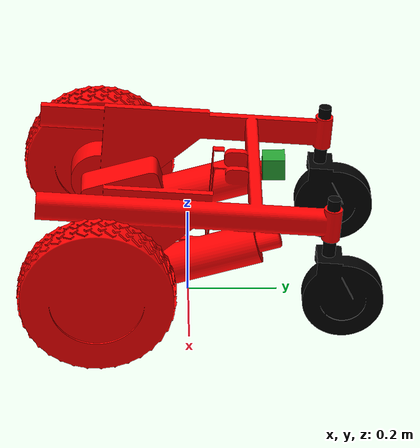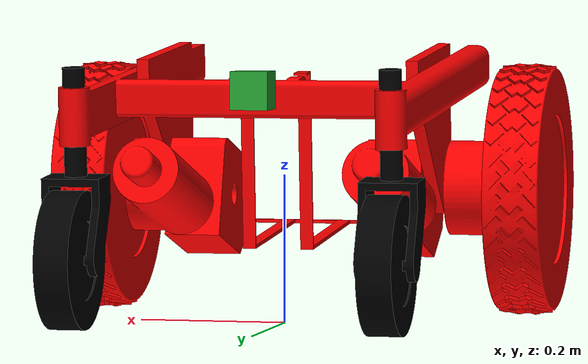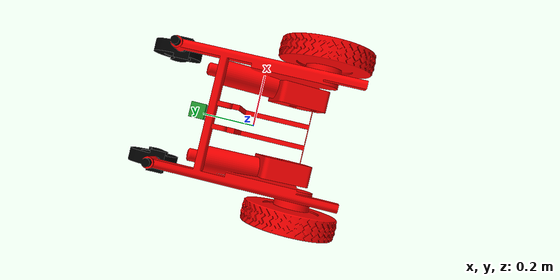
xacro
<?xml version='1.0'?>
<robot name="lawnmow" xmlns:xacro="http://www.ros.org/wiki/xacro">
  <xacro:property name="cameraSize" value="0.05"/>
  <xacro:property name="cameraMass" value="0.1"/>
  <xacro:include filename="$(find lawnmow_description)/urdf/lawnmow.gazebo" />
  <xacro:include filename="$(find lawnmow_description)/urdf/materials.xacro" />
  <xacro:include filename="$(find lawnmow_description)/urdf/macros.xacro" />

  <link name='chassis'>

    <pose>0 0 0 0 0 0</pose>

    <inertial>
      <box_inertia m="10" x=".4" y=".58" z=".2" />
      <mass value="10.0"/>
      <origin xyz="0 0 .25" rpy=" 0 0 0"/>
      <inertia
          ixx="0.31365412" ixy="0" ixz="0"
          iyy="0.16666" iyz="0"
          izz="0.41365012"
      />
    </inertial>

    <collision name='collision'>
      <origin xyz="0 0 .08" rpy="0 0 0"/>
      <geometry>
        <mesh scale=".0010 .0010 .0010" filename="package://lawnmow_description/meshes/frame.stl"/>
      </geometry>
    </collision>

    <visual name='chassis_visual'>
      <origin xyz="0 0 .08" rpy=" 0 0 0"/>
      <geometry>
        <mesh scale=".0010 .0010 .0010" filename="package://lawnmow_description/meshes/frame.stl"/>
      </geometry>
      <material name="red">
          <color rgba="1 0 0 1"/>
      </material>
    </visual>
  </link>

  <link name="lfcaster">
    <collision name='lfcollision'>
      <origin xyz="0 .3 .0326" rpy="1.55 0 0"/>
      <geometry>
        <mesh scale=".0010 .0010 .0010" filename="package://lawnmow_description/meshes/caster.stl"/>
      </geometry>

      <surface>
        <friction>
          <ode>
            <mu>0</mu>
            <mu2>0</mu2>
            <slip1>.001</slip1>
            <slip2>.001</slip2>
          </ode>
        </friction>
      </surface>
    </collision>

    <visual name='lfcaster_visual'>
      <origin xyz="0 .3 .0326" rpy="1.55 0 0"/>
      <geometry>
        <mesh scale=".0010 .0010 .0010" filename="package://lawnmow_description/meshes/caster.stl"/>
      </geometry>
      <material name="black">
          <color rgba="0 0 0 1"/>
      </material>
    </visual>
    <inertial>
      <origin xyz="0 .19 0" />
      <mass value="1.5"/>
      <sphere_inertial m="1.5" r="0.167022" h="0.07"/>
      <inertia
        ixx="0.0174" ixy="0.0" ixz="0.0"
        iyy="0.0174" iyz="0.0"
        izz="0.0174"/>
    </inertial>

  </link>

  <link name="rfcaster">
    <collision name='rfcollision'>
      <origin xyz="0 .3 0.0326" rpy="1.55 0 0"/>
      <geometry>
        <mesh scale=".0010 .0010 .0010" filename="package://lawnmow_description/meshes/caster.stl"/>
      </geometry>
      <surface>
        <friction>
          <ode1>
            <mu>0</mu>
            <mu2>0</mu2>
            <slip1>.001</slip1>
            <slip2>.001</slip2>
          </ode1>
        </friction>
      </surface>
    </collision>

    <visual name='rfcaster_visual'>
      <origin xyz="0 .3 0.0326" rpy="1.55 0 0"/>
      <geometry>
        <mesh scale=".0010 .0010 .0010" filename="package://lawnmow_description/meshes/caster.stl"/>
      </geometry>
      <material name="black">
          <color rgba="0 0 0 1"/>
      </material>
    </visual>
    <inertial>
      <origin xyz="0 0.19 0" />
      <mass value="1.5"/>
      <sphere_inertial m="1.5" r="0.167022"/>
      <inertia
        ixx="0.0174" ixy="0.0" ixz="0.0"
        iyy="0.0174" iyz="0.0"
        izz="0.0174"/>
    </inertial>

  </link>

  <link name="left_wheel">
    <collision name="collision">
      <origin xyz="0 0 -.17312" rpy="0 0 0"/>
      <geometry>
        <mesh scale=".0010 .0010 .0010" filename="package://lawnmow_description/meshes/wheel.stl"/>
      </geometry>
    </collision>

    <visual name="left_wheel_visual">
      <origin xyz="0 0 -.17312" rpy="0 0 0"/>
      <geometry>
        <mesh scale=".0010 .0010 .0010" filename="package://lawnmow_description/meshes/wheel.stl"/>
      </geometry>
      <material name="black">
          <color rgba="1 0 0 1"/>
      </material>
    </visual>

    <inertial>
      <origin xyz="0 0 0"/>
      <mass value="1.5"/>
      <cylinder_inertia m="1.5" r="0.17312" h="0.07"/>
      <inertia
        ixx=".02953731" ixy="0.0" ixz="0.0"
        iyy=".02953731" iyz="0.0"
        izz=".02953731"/>
    </inertial>
  </link>

  <link name="right_wheel">
    <collision name="collision">
      <origin xyz="0 0 -.17312" rpy="0 0 0"/>
      <geometry>
        <mesh scale=".0010 .0010 .0010" filename="package://lawnmow_description/meshes/wheel.stl"/>
      </geometry>
    </collision>

    <visual name="right_wheel_visual">
      <origin xyz="0 0 -.17312" rpy="0 0 0"/>
      <geometry>
        <mesh scale=".0010 .0010 .0010" filename="package://lawnmow_description/meshes/wheel.stl"/>
      </geometry>
      <material name="black">
          <color rgba="1 0 0 1"/>
      </material>
    </visual>

    <inertial>
      <origin xyz="0 0 0"/>
      <mass value="1.5"/>
      <cylinder_inertia m="1.5" r="0.17312" h="0.07"/>
      <inertia
        ixx=".02953731" ixy="0.0" ixz="0.0"
        iyy=".02953731" iyz="0.0"
        izz=".02953731"/>
    </inertial>
  </link>

  <joint type="continuous" name="lfcaster_hinge">
    <origin xyz="-0.206 0.31 .32" rpy="-1.63 0 0"/>
    <child link="lfcaster"/>
    <parent link="chassis"/>
    <axis xyz="0 1 0" rpy="0 0 0"/>
    <limit effort="100" velocity="100"/>
    <joint_properties damping="1.5" friction="0.5"/>
  </joint>

  <joint type="continuous" name="rfcaster_hinge">
    <origin xyz="0.206 0.31 .32" rpy="-1.63 0 0"/>
    <child link="rfcaster"/>
    <parent link="chassis"/>
    <axis xyz="0 1 0" rpy="0 0 0"/>
    <limit effort="100" velocity="100"/>
    <joint_properties damping="1.5" friction="0.5"/>
  </joint>

  <joint type="continuous" name="left_wheel_hinge">
    <origin xyz="-0.3 -0.2 .17312" rpy="0 0 0"/>
    <child link="left_wheel"/>
    <parent link="chassis"/>
    <axis xyz="1 0 0" rpy="0 0 0"/>
    <limit effort="1000" velocity="100"/>
    <joint_properties damping="0.0" friction="0.0"/>
  </joint>

  <joint type="continuous" name="right_wheel_hinge">
    <origin xyz="0.3 -0.2 .17312" rpy="0 0 0"/>
    <child link="right_wheel"/>
    <parent link="chassis"/>
    <axis xyz="1 0 0" rpy="0 0 0"/>
    <limit effort="1000" velocity="100"/>
    <joint_properties damping="0.0" friction="0.0"/>
  </joint>

  <link name="camera">
    <collision>
      <origin xyz="0 .19 0.32" rpy="0 0 0"/>
      <geometry>
        <box size="${cameraSize} ${cameraSize} ${cameraSize}"/>
      </geometry>
    </collision>

    <visual>
      <origin xyz="0 .19 0.32" rpy="0 0 0"/>
      <geometry>
        <box size="${cameraSize} ${cameraSize} ${cameraSize}"/>
      </geometry>
      <material name="green"/>
    </visual>

    <inertial>
      <mass value="${cameraMass}" />
      <origin xyz="0 .19 .32" rpy="0 0 0"/>
      <box_inertia m="${cameraMass}" x="${cameraSize}" y="${cameraSize}" z="${cameraSize}" />
      <inertia ixx="1e-6" ixy="0" ixz="0" iyy="1e-6" iyz="0" izz="1e-6" />
    </inertial>
  </link>

  <joint name="camera_joint" type="fixed">
    <axis xyz="0 1 0" />
    <origin xyz="0 0 0" rpy="0 0 0"/>
    <parent link="chassis"/>
    <child link="camera"/>
  </joint>

</robot>
